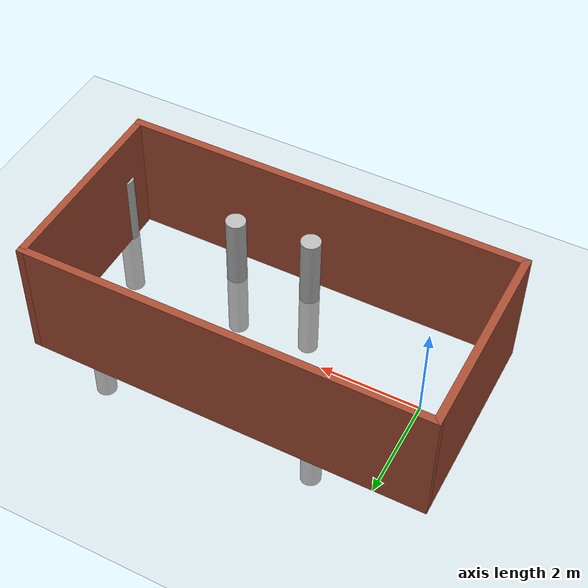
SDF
<sdf version="1.6">
 <world name="default">
  <plugin name="ros_interface_plugin" filename="librotors_gazebo_ros_interface_plugin.so"/>
  <light name="sun" type="directional">
   <pose>0 0 10 0 -0 0</pose>
   <diffuse>0.8 0.8 0.8 1</diffuse>
   <specular>0.2 0.2 0.2 1</specular>
   <attenuation>
    <range>1000</range>
    <constant>0.9</constant>
    <linear>0.01</linear>
    <quadratic>0.001</quadratic>
   </attenuation>
   <direction>-0.5 0.1 -0.9</direction>
  </light>
  <model name="ground_plane">
   <static>1</static>
   <link name="link">
    <collision name="collision">
     <geometry><plane><normal>0 0 1</normal><size>100 100</size></plane></geometry>
     <surface><friction><ode><mu>100</mu><mu2>50</mu2></ode></friction></surface>
    </collision>
    <visual name="visual">
     <cast_shadows>0</cast_shadows>
     <geometry><plane><normal>0 0 1</normal><size>100 100</size></plane></geometry>
     <material>
      <script><uri>file://media/materials/scripts/gazebo.material</uri><name>Gazebo/Grey</name></script>
     </material>
    </visual>
   </link>
  </model>
  <model name="target">
   <pose>1.2 1.32 1.5 0 0 0</pose>
   <static>0</static>
   <link name="link">
    <gravity>0</gravity>
    <collision name="collision">
     <geometry><sphere><radius>0.051</radius></sphere></geometry>
     <surface><contact><collide_without_contact>1</collide_without_contact></contact></surface>
    </collision>
    <visual name="visual">
     <material>
      <ambient>0.1 0.1 0.1 1</ambient>
      <diffuse>0.1 0.1 0.2 1</diffuse>
      <specular>0 1 1 0</specular>
      <emissive>0 1 0 1</emissive>
     </material>
     <geometry><sphere><radius>0.051</radius></sphere></geometry>
    </visual>
   </link>
  </model>
  <model name="object1">
   <pose>1.5 1.32 0 0 0 0</pose>
   <link name="link">
    <inertial>
     <mass>1000</mass>
     <inertia><ixx>0.145833</ixx><ixy>0</ixy><ixz>0</ixz><iyy>0.145833</iyy><iyz>0</iyz><izz>0.125</izz></inertia>
    </inertial>
    <collision name="collision">
     <geometry><cylinder><radius>0.2</radius><length>3</length></cylinder></geometry>
    </collision>
    <visual name="visual">
     <geometry><cylinder><radius>0.2</radius><length>3</length></cylinder></geometry>
    </visual>
   </link>
  </model>
  <model name="object2">
   <pose>3 -1.5 0 0 0 0</pose>
   <link name="link">
    <inertial>
     <mass>1000</mass>
     <inertia><ixx>0.145833</ixx><ixy>0</ixy><ixz>0</ixz><iyy>0.145833</iyy><iyz>0</iyz><izz>0.125</izz></inertia>
    </inertial>
    <collision name="collision">
     <geometry><cylinder><radius>0.2</radius><length>3</length></cylinder></geometry>
    </collision>
    <visual name="visual">
     <geometry><cylinder><radius>0.2</radius><length>3</length></cylinder></geometry>
    </visual>
   </link>
  </model>
  <model name="object3">
   <pose>4.5 -1.32 0 0 0 0</pose>
   <link name="link">
    <inertial>
     <mass>1000</mass>
     <inertia><ixx>0.145833</ixx><ixy>0</ixy><ixz>0</ixz><iyy>0.145833</iyy><iyz>0</iyz><izz>0.125</izz></inertia>
    </inertial>
    <collision name="collision">
     <geometry><cylinder><radius>0.2</radius><length>3</length></cylinder></geometry>
    </collision>
    <visual name="visual">
     <geometry><cylinder><radius>0.2</radius><length>3</length></cylinder></geometry>
    </visual>
   </link>
  </model>
  <model name="object4">
   <pose>6 1.32 0 0 0 0</pose>
   <link name="link">
    <inertial>
     <mass>1000</mass>
     <inertia><ixx>0.145833</ixx><ixy>0</ixy><ixz>0</ixz><iyy>0.145833</iyy><iyz>0</iyz><izz>0.125</izz></inertia>
    </inertial>
    <collision name="collision">
     <geometry><cylinder><radius>0.2</radius><length>3</length></cylinder></geometry>
    </collision>
    <visual name="visual">
     <geometry><cylinder><radius>0.2</radius><length>3</length></cylinder></geometry>
    </visual>
   </link>
  </model>
  <model name="object5">
   <pose>7 -1.32 0 0 0 0</pose>
   <link name="link">
    <inertial>
     <mass>1000</mass>
     <inertia><ixx>0.145833</ixx><ixy>0</ixy><ixz>0</ixz><iyy>0.145833</iyy><iyz>0</iyz><izz>0.125</izz></inertia>
    </inertial>
    <collision name="collision">
     <geometry><cylinder><radius>0.2</radius><length>3</length></cylinder></geometry>
    </collision>
    <visual name="visual">
     <geometry><cylinder><radius>0.2</radius><length>3</length></cylinder></geometry>
    </visual>
   </link>
  </model>
  <gravity>0 0 -9.8</gravity>
  <magnetic_field>6e-06 2.3e-05 -4.2e-05</magnetic_field>
  <atmosphere type="adiabatic"/>
  <physics name="default_physics" default="0" type="ode">
   <max_step_size>0.001</max_step_size>
   <real_time_factor>1</real_time_factor>
   <real_time_update_rate>1000</real_time_update_rate>
  </physics>
  <scene><ambient>0.4 0.4 0.4 1</ambient><background>0.7 0.7 0.7 1</background><shadows>1</shadows></scene>
  <spherical_coordinates>
   <surface_model>EARTH_WGS84</surface_model>
   <latitude_deg>0</latitude_deg>
   <longitude_deg>0</longitude_deg>
   <elevation>0</elevation>
   <heading_deg>0</heading_deg>
  </spherical_coordinates>
  <model name="new_model">
   <pose frame="world">3 0 0 0 -0 0</pose>
   <link name="Wall_0">
    <collision name="Wall_0_Collision">
     <geometry><box><size>8 0.15 2.5</size></box></geometry>
     <pose>0 0 1.25 0 -0 0</pose>
    </collision>
    <visual name="Wall_0_Visual">
     <pose>0 0 1.25 0 -0 0</pose>
     <geometry><box><size>8 0.15 2.5</size></box></geometry>
     <material>
      <script><uri>file://media/materials/scripts/gazebo.material</uri><name>Gazebo/Bricks</name></script>
      <ambient>1 1 1 1</ambient>
     </material>
     <meta><layer>0</layer></meta>
    </visual>
    <pose>-0 1.925 0 0 -0 3.14159</pose>
   </link>
   <link name="Wall_1">
    <collision name="Wall_1_Collision">
     <geometry><box><size>4 0.15 2.5</size></box></geometry>
     <pose>0 0 1.25 0 -0 0</pose>
    </collision>
    <visual name="Wall_1_Visual">
     <pose>0 0 1.25 0 -0 0</pose>
     <geometry><box><size>4 0.15 2.5</size></box></geometry>
     <material>
      <script><uri>file://media/materials/scripts/gazebo.material</uri><name>Gazebo/Bricks</name></script>
      <ambient>1 1 1 1</ambient>
     </material>
     <meta><layer>0</layer></meta>
    </visual>
    <pose>-3.925 0 0 0 -0 -1.5708</pose>
   </link>
   <link name="Wall_2">
    <collision name="Wall_2_Collision">
     <geometry><box><size>8 0.15 2.5</size></box></geometry>
     <pose>0 0 1.25 0 -0 0</pose>
    </collision>
    <visual name="Wall_2_Visual">
     <pose>0 0 1.25 0 -0 0</pose>
     <geometry><box><size>8 0.15 2.5</size></box></geometry>
     <material>
      <script><uri>file://media/materials/scripts/gazebo.material</uri><name>Gazebo/Bricks</name></script>
      <ambient>1 1 1 1</ambient>
     </material>
     <meta><layer>0</layer></meta>
    </visual>
    <pose>-0 -1.925 0 0 -0 0</pose>
   </link>
   <link name="Wall_3">
    <collision name="Wall_3_Collision">
     <geometry><box><size>4 0.15 2.5</size></box></geometry>
     <pose>0 0 1.25 0 -0 0</pose>
    </collision>
    <visual name="Wall_3_Visual">
     <pose>0 0 1.25 0 -0 0</pose>
     <geometry><box><size>4 0.15 2.5</size></box></geometry>
     <material>
      <script><uri>file://media/materials/scripts/gazebo.material</uri><name>Gazebo/Bricks</name></script>
      <ambient>1 1 1 1</ambient>
     </material>
     <meta><layer>0</layer></meta>
    </visual>
    <pose>3.925 0 0 0 -0 1.5708</pose>
   </link>
   <static>1</static>
  </model>
 </world>
</sdf>
